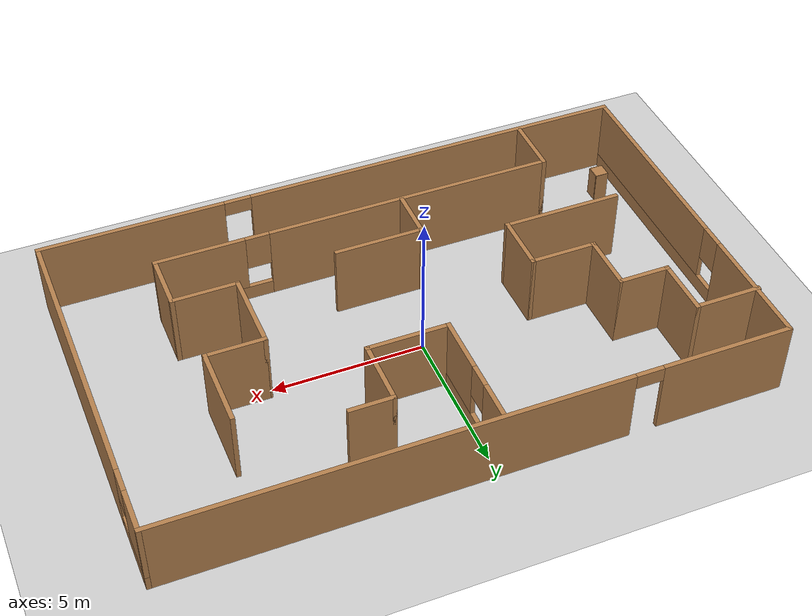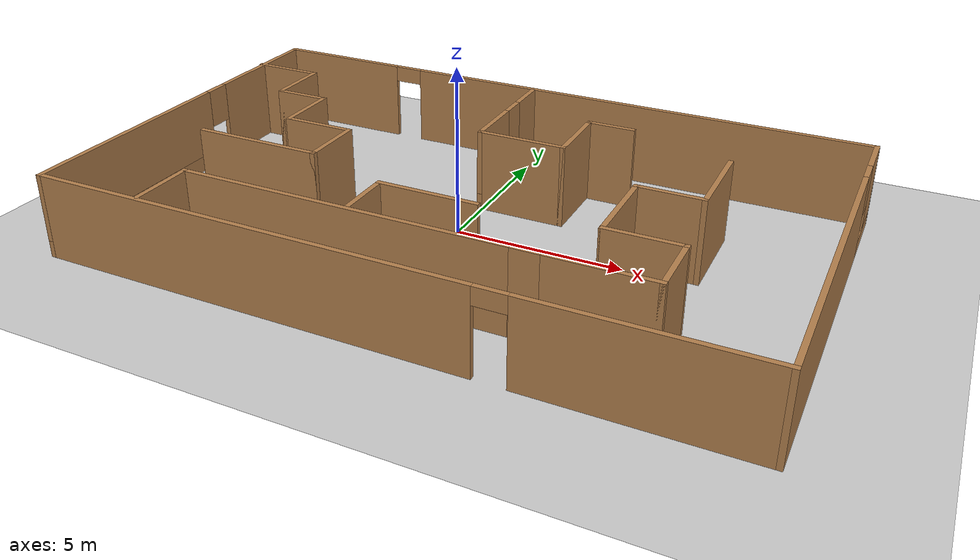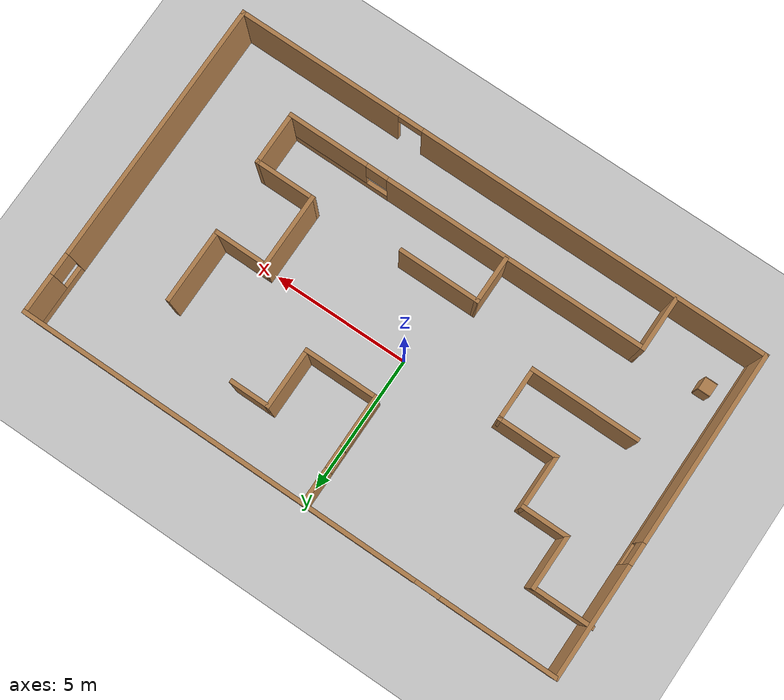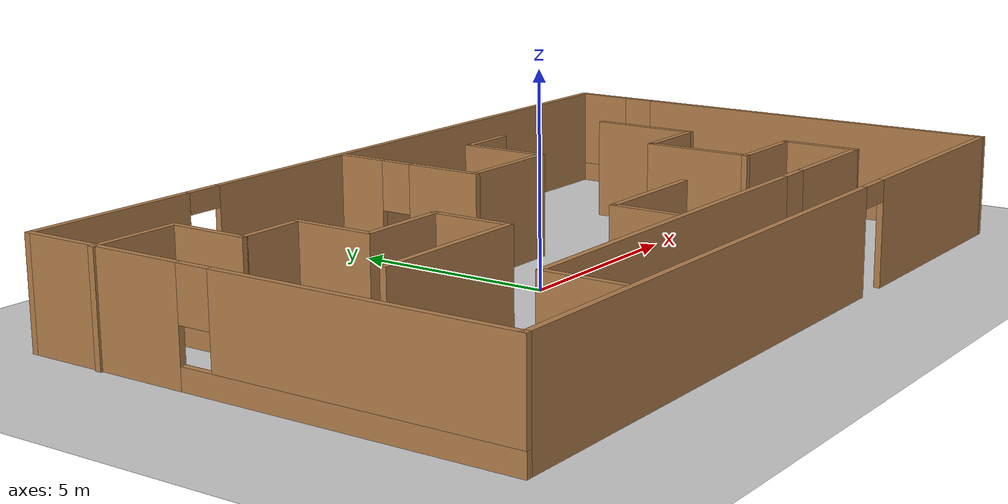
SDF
<sdf version="1.7">
 <world name="default">
  <light name="sun" type="directional">
   <pose>0 0 10 0 -0 0</pose>
   <diffuse>0.8 0.8 0.8 1</diffuse>
   <specular>0.2 0.2 0.2 1</specular>
   <attenuation>
    <range>1000</range>
    <constant>0.9</constant>
    <linear>0.01</linear>
    <quadratic>0.001</quadratic>
   </attenuation>
   <direction>-0.5 0.1 -0.9</direction>
   <spot><inner_angle>0</inner_angle><outer_angle>0</outer_angle><falloff>0</falloff></spot>
  </light>
  <model name="ground_plane">
   <static>1</static>
   <link name="link">
    <collision name="collision">
     <geometry><plane><normal>0 0 1</normal><size>100 100</size></plane></geometry>
     <surface>
      <contact><collide_bitmask>65535</collide_bitmask></contact>
      <friction><ode><mu>100</mu><mu2>50</mu2></ode></friction>
     </surface>
    </collision>
    <visual name="visual">
     <cast_shadows>0</cast_shadows>
     <geometry><plane><normal>0 0 1</normal><size>100 100</size></plane></geometry>
     <material>
      <script><uri>file://media/materials/scripts/gazebo.material</uri><name>Gazebo/Grey</name></script>
     </material>
    </visual>
   </link>
  </model>
  <gravity>0 0 -9.8</gravity>
  <magnetic_field>6e-06 2.3e-05 -4.2e-05</magnetic_field>
  <atmosphere type="adiabatic"/>
  <physics type="ode">
   <max_step_size>0.001</max_step_size>
   <real_time_factor>1</real_time_factor>
   <real_time_update_rate>1000</real_time_update_rate>
   <ode>
    <solver>
     <type>quick</type>
     <iters>150</iters>
     <precon_iters>0</precon_iters>
     <sor>1.4</sor>
     <use_dynamic_moi_rescaling>1</use_dynamic_moi_rescaling>
    </solver>
    <constraints>
     <cfm>0.00001</cfm>
     <erp>0.2</erp>
     <contact_max_correcting_vel>2000</contact_max_correcting_vel>
     <contact_surface_layer>0.01</contact_surface_layer>
    </constraints>
   </ode>
  </physics>
  <scene><ambient>0.4 0.4 0.4 1</ambient><background>0.7 0.7 0.7 1</background><shadows>1</shadows></scene>
  <spherical_coordinates>
   <surface_model>EARTH_WGS84</surface_model>
   <latitude_deg>0</latitude_deg>
   <longitude_deg>0</longitude_deg>
   <elevation>0</elevation>
   <heading_deg>0</heading_deg>
  </spherical_coordinates>
  <model name="map2">
   <pose>0.511789 -0.26427 0 0 -0 0</pose>
   <link name="Wall_10">
    <pose>0.0266 -5.925 0 0 -0 0</pose>
    <visual name="Wall_10_Visual_0">
     <pose>-3.52415 0 1.25 0 -0 0</pose>
     <geometry><box><size>12.9517 0.15 2.5</size></box></geometry>
     <material>
      <script><uri>file://media/materials/scripts/gazebo.material</uri><name>Gazebo/Wood</name></script>
      <ambient>1 1 1 1</ambient>
     </material>
     <meta><layer>0</layer></meta>
    </visual>
    <collision name="Wall_10_Collision_0">
     <geometry><box><size>12.9517 0.15 2.5</size></box></geometry>
     <pose>-3.52415 0 1.25 0 -0 0</pose>
    </collision>
    <visual name="Wall_10_Visual_1">
     <pose>6.92585 0 1.25 0 -0 0</pose>
     <geometry><box><size>6.1483 0.15 2.5</size></box></geometry>
     <material>
      <script><uri>file://media/materials/scripts/gazebo.material</uri><name>Gazebo/Wood</name></script>
      <ambient>1 1 1 1</ambient>
     </material>
     <meta><layer>0</layer></meta>
    </visual>
    <collision name="Wall_10_Collision_1">
     <geometry><box><size>6.1483 0.15 2.5</size></box></geometry>
     <pose>6.92585 0 1.25 0 -0 0</pose>
    </collision>
    <visual name="Wall_10_Visual_2">
     <pose>3.4017 0 2.25 0 -0 0</pose>
     <geometry><box><size>0.9 0.15 0.5</size></box></geometry>
     <material>
      <script><uri>file://media/materials/scripts/gazebo.material</uri><name>Gazebo/Wood</name></script>
      <ambient>1 1 1 1</ambient>
     </material>
     <meta><layer>0</layer></meta>
    </visual>
    <collision name="Wall_10_Collision_2">
     <geometry><box><size>0.9 0.15 0.5</size></box></geometry>
     <pose>3.4017 0 2.25 0 -0 0</pose>
    </collision>
   </link>
   <link name="Wall_11">
    <pose>9.9516 0 0 0 -0 1.5708</pose>
    <visual name="Wall_11_Visual_0">
     <pose>-1.15521 0 1.25 0 -0 0</pose>
     <geometry><box><size>9.68959 0.15 2.5</size></box></geometry>
     <material>
      <script><uri>file://media/materials/scripts/gazebo.material</uri><name>Gazebo/Wood</name></script>
      <ambient>1 1 1 1</ambient>
     </material>
     <meta><layer>0</layer></meta>
    </visual>
    <collision name="Wall_11_Collision_0">
     <geometry><box><size>9.68959 0.15 2.5</size></box></geometry>
     <pose>-1.15521 0 1.25 0 -0 0</pose>
    </collision>
    <visual name="Wall_11_Visual_1">
     <pose>4.84479 0 0.25 0 -0 0</pose>
     <geometry><box><size>2.31041 0.15 0.5</size></box></geometry>
     <material>
      <script><uri>file://media/materials/scripts/gazebo.material</uri><name>Gazebo/Wood</name></script>
      <ambient>1 1 1 1</ambient>
     </material>
     <meta><layer>0</layer></meta>
    </visual>
    <collision name="Wall_11_Collision_1">
     <geometry><box><size>2.31041 0.15 0.5</size></box></geometry>
     <pose>4.84479 0 0.25 0 -0 0</pose>
    </collision>
    <visual name="Wall_11_Visual_2">
     <pose>5.24479 0 1.5 0 -0 0</pose>
     <geometry><box><size>1.51041 0.15 2</size></box></geometry>
     <material>
      <script><uri>file://media/materials/scripts/gazebo.material</uri><name>Gazebo/Wood</name></script>
      <ambient>1 1 1 1</ambient>
     </material>
     <meta><layer>0</layer></meta>
    </visual>
    <collision name="Wall_11_Collision_2">
     <geometry><box><size>1.51041 0.15 2</size></box></geometry>
     <pose>5.24479 0 1.5 0 -0 0</pose>
    </collision>
    <visual name="Wall_11_Visual_3">
     <pose>4.08959 0 1.9 0 -0 0</pose>
     <geometry><box><size>0.8 0.15 1.2</size></box></geometry>
     <material>
      <script><uri>file://media/materials/scripts/gazebo.material</uri><name>Gazebo/Wood</name></script>
      <ambient>1 1 1 1</ambient>
     </material>
     <meta><layer>0</layer></meta>
    </visual>
    <collision name="Wall_11_Collision_3">
     <geometry><box><size>0.8 0.15 1.2</size></box></geometry>
     <pose>4.08959 0 1.9 0 -0 0</pose>
    </collision>
   </link>
   <link name="Wall_12">
    <pose>0.0266 5.925 0 0 -0 3.14159</pose>
    <visual name="Wall_12_Visual_0">
     <pose>-2.60332 0 1.25 0 -0 0</pose>
     <geometry><box><size>14.7934 0.15 2.5</size></box></geometry>
     <material>
      <script><uri>file://media/materials/scripts/gazebo.material</uri><name>Gazebo/Wood</name></script>
      <ambient>1 1 1 1</ambient>
     </material>
     <meta><layer>0</layer></meta>
    </visual>
    <collision name="Wall_12_Collision_0">
     <geometry><box><size>14.7934 0.15 2.5</size></box></geometry>
     <pose>-2.60332 0 1.25 0 -0 0</pose>
    </collision>
    <visual name="Wall_12_Visual_1">
     <pose>7.84668 0 1.25 0 -0 0</pose>
     <geometry><box><size>4.30663 0.15 2.5</size></box></geometry>
     <material>
      <script><uri>file://media/materials/scripts/gazebo.material</uri><name>Gazebo/Wood</name></script>
      <ambient>1 1 1 1</ambient>
     </material>
     <meta><layer>0</layer></meta>
    </visual>
    <collision name="Wall_12_Collision_1">
     <geometry><box><size>4.30663 0.15 2.5</size></box></geometry>
     <pose>7.84668 0 1.25 0 -0 0</pose>
    </collision>
    <visual name="Wall_12_Visual_2">
     <pose>5.24336 0 2.25 0 -0 0</pose>
     <geometry><box><size>0.9 0.15 0.5</size></box></geometry>
     <material>
      <script><uri>file://media/materials/scripts/gazebo.material</uri><name>Gazebo/Wood</name></script>
      <ambient>1 1 1 1</ambient>
     </material>
     <meta><layer>0</layer></meta>
    </visual>
    <collision name="Wall_12_Collision_2">
     <geometry><box><size>0.9 0.15 0.5</size></box></geometry>
     <pose>5.24336 0 2.25 0 -0 0</pose>
    </collision>
   </link>
   <link name="Wall_14">
    <collision name="Wall_14_Collision">
     <geometry><box><size>2.25 0.15 2.5</size></box></geometry>
     <pose>0 0 1.25 0 -0 0</pose>
    </collision>
    <visual name="Wall_14_Visual">
     <pose>0 0 1.25 0 -0 0</pose>
     <geometry><box><size>2.25 0.15 2.5</size></box></geometry>
     <material>
      <script><uri>file://media/materials/scripts/gazebo.material</uri><name>Gazebo/Wood</name></script>
      <ambient>1 1 1 1</ambient>
     </material>
     <meta><layer>0</layer></meta>
    </visual>
    <pose>-8.9016 4.06299 0 0 -0 0</pose>
   </link>
   <link name="Wall_15">
    <collision name="Wall_15_Collision">
     <geometry><box><size>2 0.15 2.5</size></box></geometry>
     <pose>0 0 1.25 0 -0 0</pose>
    </collision>
    <visual name="Wall_15_Visual">
     <pose>0 0 1.25 0 -0 0</pose>
     <geometry><box><size>2 0.15 2.5</size></box></geometry>
     <material>
      <script><uri>file://media/materials/scripts/gazebo.material</uri><name>Gazebo/Wood</name></script>
      <ambient>1 1 1 1</ambient>
     </material>
     <meta><layer>0</layer></meta>
    </visual>
    <pose>-7.8516 3.13799 0 0 -0 -1.5708</pose>
   </link>
   <link name="Wall_16">
    <collision name="Wall_16_Collision">
     <geometry><box><size>1.75 0.15 2.5</size></box></geometry>
     <pose>0 0 1.25 0 -0 0</pose>
    </collision>
    <visual name="Wall_16_Visual">
     <pose>0 0 1.25 0 -0 0</pose>
     <geometry><box><size>1.75 0.15 2.5</size></box></geometry>
     <material>
      <script><uri>file://media/materials/scripts/gazebo.material</uri><name>Gazebo/Wood</name></script>
      <ambient>1 1 1 1</ambient>
     </material>
     <meta><layer>0</layer></meta>
    </visual>
    <pose>-7.0516 2.21299 0 0 -0 0</pose>
   </link>
   <link name="Wall_17">
    <collision name="Wall_17_Collision">
     <geometry><box><size>2 0.15 2.5</size></box></geometry>
     <pose>0 0 1.25 0 -0 0</pose>
    </collision>
    <visual name="Wall_17_Visual">
     <pose>0 0 1.25 0 -0 0</pose>
     <geometry><box><size>2 0.15 2.5</size></box></geometry>
     <material>
      <script><uri>file://media/materials/scripts/gazebo.material</uri><name>Gazebo/Wood</name></script>
      <ambient>1 1 1 1</ambient>
     </material>
     <meta><layer>0</layer></meta>
    </visual>
    <pose>-6.2516 1.28799 0 0 -0 -1.5708</pose>
   </link>
   <link name="Wall_18">
    <collision name="Wall_18_Collision">
     <geometry><box><size>2.25 0.15 2.5</size></box></geometry>
     <pose>0 0 1.25 0 -0 0</pose>
    </collision>
    <visual name="Wall_18_Visual">
     <pose>0 0 1.25 0 -0 0</pose>
     <geometry><box><size>2.25 0.15 2.5</size></box></geometry>
     <material>
      <script><uri>file://media/materials/scripts/gazebo.material</uri><name>Gazebo/Wood</name></script>
      <ambient>1 1 1 1</ambient>
     </material>
     <meta><layer>0</layer></meta>
    </visual>
    <pose>-5.2016 0.362986 0 0 -0 0</pose>
   </link>
   <link name="Wall_19">
    <collision name="Wall_19_Collision">
     <geometry><box><size>2 0.15 2.5</size></box></geometry>
     <pose>0 0 1.25 0 -0 0</pose>
    </collision>
    <visual name="Wall_19_Visual">
     <pose>0 0 1.25 0 -0 0</pose>
     <geometry><box><size>2 0.15 2.5</size></box></geometry>
     <material>
      <script><uri>file://media/materials/scripts/gazebo.material</uri><name>Gazebo/Wood</name></script>
      <ambient>1 1 1 1</ambient>
     </material>
     <meta><layer>0</layer></meta>
    </visual>
    <pose>-4.1516 -0.562014 0 0 -0 -1.5708</pose>
   </link>
   <link name="Wall_20">
    <collision name="Wall_20_Collision">
     <geometry><box><size>4 0.15 2.5</size></box></geometry>
     <pose>0 0 1.25 0 -0 0</pose>
    </collision>
    <visual name="Wall_20_Visual">
     <pose>0 0 1.25 0 -0 0</pose>
     <geometry><box><size>4 0.15 2.5</size></box></geometry>
     <material>
      <script><uri>file://media/materials/scripts/gazebo.material</uri><name>Gazebo/Wood</name></script>
      <ambient>1 1 1 1</ambient>
     </material>
     <meta><layer>0</layer></meta>
    </visual>
    <pose>-6.0766 -1.48701 0 0 -0 3.14159</pose>
   </link>
   <link name="Wall_22">
    <collision name="Wall_22_Collision">
     <geometry><box><size>2 0.15 2.5</size></box></geometry>
     <pose>0 0 1.25 0 -0 0</pose>
    </collision>
    <visual name="Wall_22_Visual">
     <pose>0 0 1.25 0 -0 0</pose>
     <geometry><box><size>2 0.15 2.5</size></box></geometry>
     <material>
      <script><uri>file://media/materials/scripts/gazebo.material</uri><name>Gazebo/Wood</name></script>
      <ambient>1 1 1 1</ambient>
     </material>
     <meta><layer>0</layer></meta>
    </visual>
    <pose>-6.62658 -4.90729 0 0 -0 1.5708</pose>
   </link>
   <link name="Wall_23">
    <pose>0.048424 -3.98229 0 0 -0 0</pose>
    <visual name="Wall_23_Visual_0">
     <pose>-1.89836 0 1.25 0 -0 0</pose>
     <geometry><box><size>9.70327 0.15 2.5</size></box></geometry>
     <material>
      <script><uri>file://media/materials/scripts/gazebo.material</uri><name>Gazebo/Wood</name></script>
      <ambient>1 1 1 1</ambient>
     </material>
     <meta><layer>0</layer></meta>
    </visual>
    <collision name="Wall_23_Collision_0">
     <geometry><box><size>9.70327 0.15 2.5</size></box></geometry>
     <pose>-1.89836 0 1.25 0 -0 0</pose>
    </collision>
    <visual name="Wall_23_Visual_1">
     <pose>4.85164 0 0.25 0 -0 0</pose>
     <geometry><box><size>3.79672 0.15 0.5</size></box></geometry>
     <material>
      <script><uri>file://media/materials/scripts/gazebo.material</uri><name>Gazebo/Wood</name></script>
      <ambient>1 1 1 1</ambient>
     </material>
     <meta><layer>0</layer></meta>
    </visual>
    <collision name="Wall_23_Collision_1">
     <geometry><box><size>3.79672 0.15 0.5</size></box></geometry>
     <pose>4.85164 0 0.25 0 -0 0</pose>
    </collision>
    <visual name="Wall_23_Visual_2">
     <pose>5.25164 0 1.5 0 -0 0</pose>
     <geometry><box><size>2.99673 0.15 2</size></box></geometry>
     <material>
      <script><uri>file://media/materials/scripts/gazebo.material</uri><name>Gazebo/Wood</name></script>
      <ambient>1 1 1 1</ambient>
     </material>
     <meta><layer>0</layer></meta>
    </visual>
    <collision name="Wall_23_Collision_2">
     <geometry><box><size>2.99673 0.15 2</size></box></geometry>
     <pose>5.25164 0 1.5 0 -0 0</pose>
    </collision>
    <visual name="Wall_23_Visual_3">
     <pose>3.35328 0 1.9 0 -0 0</pose>
     <geometry><box><size>0.8 0.15 1.2</size></box></geometry>
     <material>
      <script><uri>file://media/materials/scripts/gazebo.material</uri><name>Gazebo/Wood</name></script>
      <ambient>1 1 1 1</ambient>
     </material>
     <meta><layer>0</layer></meta>
    </visual>
    <collision name="Wall_23_Collision_3">
     <geometry><box><size>0.8 0.15 1.2</size></box></geometry>
     <pose>3.35328 0 1.9 0 -0 0</pose>
    </collision>
   </link>
   <link name="Wall_24">
    <collision name="Wall_24_Collision">
     <geometry><box><size>2 0.15 2.5</size></box></geometry>
     <pose>0 0 1.25 0 -0 0</pose>
    </collision>
    <visual name="Wall_24_Visual">
     <pose>0 0 1.25 0 -0 0</pose>
     <geometry><box><size>2 0.15 2.5</size></box></geometry>
     <material>
      <script><uri>file://media/materials/scripts/gazebo.material</uri><name>Gazebo/Wood</name></script>
      <ambient>1 1 1 1</ambient>
     </material>
     <meta><layer>0</layer></meta>
    </visual>
    <pose>6.72342 -3.05729 0 0 -0 1.5708</pose>
   </link>
   <link name="Wall_25">
    <collision name="Wall_25_Collision">
     <geometry><box><size>2.25 0.15 2.5</size></box></geometry>
     <pose>0 0 1.25 0 -0 0</pose>
    </collision>
    <visual name="Wall_25_Visual">
     <pose>0 0 1.25 0 -0 0</pose>
     <geometry><box><size>2.25 0.15 2.5</size></box></geometry>
     <material>
      <script><uri>file://media/materials/scripts/gazebo.material</uri><name>Gazebo/Wood</name></script>
      <ambient>1 1 1 1</ambient>
     </material>
     <meta><layer>0</layer></meta>
    </visual>
    <pose>5.67342 -2.13229 0 0 -0 3.14159</pose>
   </link>
   <link name="Wall_26">
    <collision name="Wall_26_Collision">
     <geometry><box><size>2.75 0.15 2.5</size></box></geometry>
     <pose>0 0 1.25 0 -0 0</pose>
    </collision>
    <visual name="Wall_26_Visual">
     <pose>0 0 1.25 0 -0 0</pose>
     <geometry><box><size>2.75 0.15 2.5</size></box></geometry>
     <material>
      <script><uri>file://media/materials/scripts/gazebo.material</uri><name>Gazebo/Wood</name></script>
      <ambient>1 1 1 1</ambient>
     </material>
     <meta><layer>0</layer></meta>
    </visual>
    <pose>4.62342 -0.832288 0 0 -0 1.5708</pose>
   </link>
   <link name="Wall_27">
    <collision name="Wall_27_Collision">
     <geometry><box><size>2 0.15 2.5</size></box></geometry>
     <pose>0 0 1.25 0 -0 0</pose>
    </collision>
    <visual name="Wall_27_Visual">
     <pose>0 0 1.25 0 -0 0</pose>
     <geometry><box><size>2 0.15 2.5</size></box></geometry>
     <material>
      <script><uri>file://media/materials/scripts/gazebo.material</uri><name>Gazebo/Wood</name></script>
      <ambient>1 1 1 1</ambient>
     </material>
     <meta><layer>0</layer></meta>
    </visual>
    <pose>5.54842 0.467712 0 0 -0 0</pose>
   </link>
   <link name="Wall_28">
    <collision name="Wall_28_Collision">
     <geometry><box><size>2.75 0.15 2.5</size></box></geometry>
     <pose>0 0 1.25 0 -0 0</pose>
    </collision>
    <visual name="Wall_28_Visual">
     <pose>0 0 1.25 0 -0 0</pose>
     <geometry><box><size>2.75 0.15 2.5</size></box></geometry>
     <material>
      <script><uri>file://media/materials/scripts/gazebo.material</uri><name>Gazebo/Wood</name></script>
      <ambient>1 1 1 1</ambient>
     </material>
     <meta><layer>0</layer></meta>
    </visual>
    <pose>6.47342 1.76771 0 0 -0 1.5708</pose>
   </link>
   <link name="Wall_30">
    <pose>-0.614931 3.8936 0 0 -0 -1.5708</pose>
    <visual name="Wall_30_Visual_0">
     <pose>-1.36449 0 1.25 0 -0 0</pose>
     <geometry><box><size>1.27101 0.15 2.5</size></box></geometry>
     <material>
      <script><uri>file://media/materials/scripts/gazebo.material</uri><name>Gazebo/Wood</name></script>
      <ambient>1 1 1 1</ambient>
     </material>
     <meta><layer>0</layer></meta>
    </visual>
    <collision name="Wall_30_Collision_0">
     <geometry><box><size>1.27101 0.15 2.5</size></box></geometry>
     <pose>-1.36449 0 1.25 0 -0 0</pose>
    </collision>
    <visual name="Wall_30_Visual_1">
     <pose>0.635506 0 0.25 0 -0 0</pose>
     <geometry><box><size>2.72899 0.15 0.5</size></box></geometry>
     <material>
      <script><uri>file://media/materials/scripts/gazebo.material</uri><name>Gazebo/Wood</name></script>
      <ambient>1 1 1 1</ambient>
     </material>
     <meta><layer>0</layer></meta>
    </visual>
    <collision name="Wall_30_Collision_1">
     <geometry><box><size>2.72899 0.15 0.5</size></box></geometry>
     <pose>0.635506 0 0.25 0 -0 0</pose>
    </collision>
    <visual name="Wall_30_Visual_2">
     <pose>1.03551 0 1.5 0 -0 0</pose>
     <geometry><box><size>1.92899 0.15 2</size></box></geometry>
     <material>
      <script><uri>file://media/materials/scripts/gazebo.material</uri><name>Gazebo/Wood</name></script>
      <ambient>1 1 1 1</ambient>
     </material>
     <meta><layer>0</layer></meta>
    </visual>
    <collision name="Wall_30_Collision_2">
     <geometry><box><size>1.92899 0.15 2</size></box></geometry>
     <pose>1.03551 0 1.5 0 -0 0</pose>
    </collision>
    <visual name="Wall_30_Visual_3">
     <pose>-0.328988 0 1.9 0 -0 0</pose>
     <geometry><box><size>0.8 0.15 1.2</size></box></geometry>
     <material>
      <script><uri>file://media/materials/scripts/gazebo.material</uri><name>Gazebo/Wood</name></script>
      <ambient>1 1 1 1</ambient>
     </material>
     <meta><layer>0</layer></meta>
    </visual>
    <collision name="Wall_30_Collision_3">
     <geometry><box><size>0.8 0.15 1.2</size></box></geometry>
     <pose>-0.328988 0 1.9 0 -0 0</pose>
    </collision>
   </link>
   <link name="Wall_31">
    <collision name="Wall_31_Collision">
     <geometry><box><size>2.75 0.15 2.5</size></box></geometry>
     <pose>0 0 1.25 0 -0 0</pose>
    </collision>
    <visual name="Wall_31_Visual">
     <pose>0 0 1.25 0 -0 0</pose>
     <geometry><box><size>2.75 0.15 2.5</size></box></geometry>
     <material>
      <script><uri>file://media/materials/scripts/gazebo.material</uri><name>Gazebo/Wood</name></script>
      <ambient>1 1 1 1</ambient>
     </material>
     <meta><layer>0</layer></meta>
    </visual>
    <pose>0.685069 1.9686 0 0 -0 0</pose>
   </link>
   <link name="Wall_32">
    <collision name="Wall_32_Collision">
     <geometry><box><size>2.25 0.15 2.5</size></box></geometry>
     <pose>0 0 1.25 0 -0 0</pose>
    </collision>
    <visual name="Wall_32_Visual">
     <pose>0 0 1.25 0 -0 0</pose>
     <geometry><box><size>2.25 0.15 2.5</size></box></geometry>
     <material>
      <script><uri>file://media/materials/scripts/gazebo.material</uri><name>Gazebo/Wood</name></script>
      <ambient>1 1 1 1</ambient>
     </material>
     <meta><layer>0</layer></meta>
    </visual>
    <pose>1.98507 3.0186 0 0 -0 1.5708</pose>
   </link>
   <link name="Wall_33">
    <collision name="Wall_33_Collision">
     <geometry><box><size>1.5 0.15 2.5</size></box></geometry>
     <pose>0 0 1.25 0 -0 0</pose>
    </collision>
    <visual name="Wall_33_Visual">
     <pose>0 0 1.25 0 -0 0</pose>
     <geometry><box><size>1.5 0.15 2.5</size></box></geometry>
     <material>
      <script><uri>file://media/materials/scripts/gazebo.material</uri><name>Gazebo/Wood</name></script>
      <ambient>1 1 1 1</ambient>
     </material>
     <meta><layer>0</layer></meta>
    </visual>
    <pose>2.66007 4.0686 0 0 -0 0</pose>
   </link>
   <link name="Wall_35">
    <collision name="Wall_35_Collision">
     <geometry><box><size>1.75 0.15 2.5</size></box></geometry>
     <pose>0 0 1.25 0 -0 0</pose>
    </collision>
    <visual name="Wall_35_Visual">
     <pose>0 0 1.25 0 -0 0</pose>
     <geometry><box><size>1.75 0.15 2.5</size></box></geometry>
     <material>
      <script><uri>file://media/materials/scripts/gazebo.material</uri><name>Gazebo/Wood</name></script>
      <ambient>1 1 1 1</ambient>
     </material>
     <meta><layer>0</layer></meta>
    </visual>
    <pose>-1.51934 -3.11707 0 0 -0 1.5708</pose>
   </link>
   <link name="Wall_36">
    <collision name="Wall_36_Collision">
     <geometry><box><size>3 0.15 2.5</size></box></geometry>
     <pose>0 0 1.25 0 -0 0</pose>
    </collision>
    <visual name="Wall_36_Visual">
     <pose>0 0 1.25 0 -0 0</pose>
     <geometry><box><size>3 0.15 2.5</size></box></geometry>
     <material>
      <script><uri>file://media/materials/scripts/gazebo.material</uri><name>Gazebo/Wood</name></script>
      <ambient>1 1 1 1</ambient>
     </material>
     <meta><layer>0</layer></meta>
    </visual>
    <pose>-0.094338 -2.31707 0 0 -0 0</pose>
   </link>
   <link name="Wall_5">
    <pose>-9.8984 0 0 0 -0 -1.5708</pose>
    <visual name="Wall_5_Visual_0">
     <pose>-3.92808 0 1.25 0 -0 0</pose>
     <geometry><box><size>4.14383 0.15 2.5</size></box></geometry>
     <material>
      <script><uri>file://media/materials/scripts/gazebo.material</uri><name>Gazebo/Wood</name></script>
      <ambient>1 1 1 1</ambient>
     </material>
     <meta><layer>0</layer></meta>
    </visual>
    <collision name="Wall_5_Collision_0">
     <geometry><box><size>4.14383 0.15 2.5</size></box></geometry>
     <pose>-3.92808 0 1.25 0 -0 0</pose>
    </collision>
    <visual name="Wall_5_Visual_1">
     <pose>2.07192 0 0.25 0 -0 0</pose>
     <geometry><box><size>7.85617 0.15 0.5</size></box></geometry>
     <material>
      <script><uri>file://media/materials/scripts/gazebo.material</uri><name>Gazebo/Wood</name></script>
      <ambient>1 1 1 1</ambient>
     </material>
     <meta><layer>0</layer></meta>
    </visual>
    <collision name="Wall_5_Collision_1">
     <geometry><box><size>7.85617 0.15 0.5</size></box></geometry>
     <pose>2.07192 0 0.25 0 -0 0</pose>
    </collision>
    <visual name="Wall_5_Visual_2">
     <pose>2.47192 0 1.5 0 -0 0</pose>
     <geometry><box><size>7.05617 0.15 2</size></box></geometry>
     <material>
      <script><uri>file://media/materials/scripts/gazebo.material</uri><name>Gazebo/Wood</name></script>
      <ambient>1 1 1 1</ambient>
     </material>
     <meta><layer>0</layer></meta>
    </visual>
    <collision name="Wall_5_Collision_2">
     <geometry><box><size>7.05617 0.15 2</size></box></geometry>
     <pose>2.47192 0 1.5 0 -0 0</pose>
    </collision>
    <visual name="Wall_5_Visual_3">
     <pose>-1.45617 0 1.9 0 -0 0</pose>
     <geometry><box><size>0.8 0.15 1.2</size></box></geometry>
     <material>
      <script><uri>file://media/materials/scripts/gazebo.material</uri><name>Gazebo/Wood</name></script>
      <ambient>1 1 1 1</ambient>
     </material>
     <meta><layer>0</layer></meta>
    </visual>
    <collision name="Wall_5_Collision_3">
     <geometry><box><size>0.8 0.15 1.2</size></box></geometry>
     <pose>-1.45617 0 1.9 0 -0 0</pose>
    </collision>
   </link>
   <static>1</static>
  </model>
  <model name="cabinet">
   <static>1</static>
   <link name="cabinet_bottom_plate">
    <inertial>
     <pose>0 0 -1 0 -0 0</pose>
     <inertia><ixx>2.05</ixx><ixy>0</ixy><ixz>0</ixz><iyy>2.05</iyy><iyz>0</iyz><izz>2.05</izz></inertia>
     <mass>25</mass>
    </inertial>
    <collision name="cabinet_bottom_plate_geom">
     <pose>0 0 0.01 0 -0 0</pose>
     <geometry><box><size>0.45 0.45 0.02</size></box></geometry>
    </collision>
    <visual name="cabinet_bottom_plate_geom_visual">
     <pose>0 0 0.01 0 -0 0</pose>
     <geometry><box><size>0.45 0.45 0.02</size></box></geometry>
     <material>
      <script><uri>file://media/materials/scripts/gazebo.material</uri><name>Gazebo/Wood</name></script>
     </material>
    </visual>
    <collision name="cabinet_bottom_plate_geom_cabinet_back_plate">
     <pose>0.235 0 0.51 0 -0 0</pose>
     <geometry><box><size>0.02 0.45 1.02</size></box></geometry>
    </collision>
    <visual name="cabinet_bottom_plate_geom_cabinet_back_plate_visual">
     <pose>0.235 0 0.51 0 -0 0</pose>
     <geometry><box><size>0.02 0.45 1.02</size></box></geometry>
     <material>
      <script><uri>file://media/materials/scripts/gazebo.material</uri><name>Gazebo/Wood</name></script>
     </material>
    </visual>
    <collision name="cabinet_bottom_plate_geom_cabinet_left_plate">
     <pose>0 0.235 0.51 0 -0 0</pose>
     <geometry><box><size>0.45 0.02 1.02</size></box></geometry>
    </collision>
    <visual name="cabinet_bottom_plate_geom_cabinet_left_plate_visual">
     <pose>0 0.235 0.51 0 -0 0</pose>
     <geometry><box><size>0.45 0.02 1.02</size></box></geometry>
     <material>
      <script><uri>file://media/materials/scripts/gazebo.material</uri><name>Gazebo/Wood</name></script>
     </material>
    </visual>
    <collision name="cabinet_bottom_plate_geom_cabinet_middle_plate">
     <pose>0 0 0.51 0 -0 0</pose>
     <geometry><box><size>0.45 0.45 0.02</size></box></geometry>
    </collision>
    <visual name="cabinet_bottom_plate_geom_cabinet_middle_plate_visual">
     <pose>0 0 0.51 0 -0 0</pose>
     <geometry><box><size>0.45 0.45 0.02</size></box></geometry>
     <material>
      <script><uri>file://media/materials/scripts/gazebo.material</uri><name>Gazebo/Wood</name></script>
     </material>
    </visual>
    <collision name="cabinet_bottom_plate_geom_cabinet_right_plate">
     <pose>0 -0.235 0.51 0 -0 0</pose>
     <geometry><box><size>0.45 0.02 1.02</size></box></geometry>
    </collision>
    <visual name="cabinet_bottom_plate_geom_cabinet_right_plate_visual">
     <pose>0 -0.235 0.51 0 -0 0</pose>
     <geometry><box><size>0.45 0.02 1.02</size></box></geometry>
     <material>
      <script><uri>file://media/materials/scripts/gazebo.material</uri><name>Gazebo/Wood</name></script>
     </material>
    </visual>
    <collision name="cabinet_bottom_plate_geom_cabinet_top_plate">
     <pose>0 0 1.01 0 -0 0</pose>
     <geometry><box><size>0.45 0.45 0.02</size></box></geometry>
    </collision>
    <visual name="cabinet_bottom_plate_geom_cabinet_top_plate_visual">
     <pose>0 0 1.01 0 -0 0</pose>
     <geometry><box><size>0.45 0.45 0.02</size></box></geometry>
     <material>
      <script><uri>file://media/materials/scripts/gazebo.material</uri><name>Gazebo/Wood</name></script>
     </material>
    </visual>
   </link>
   <pose>-8.55766 -4.67592 0 0 -0 0</pose>
  </model>
 </world>
</sdf>
